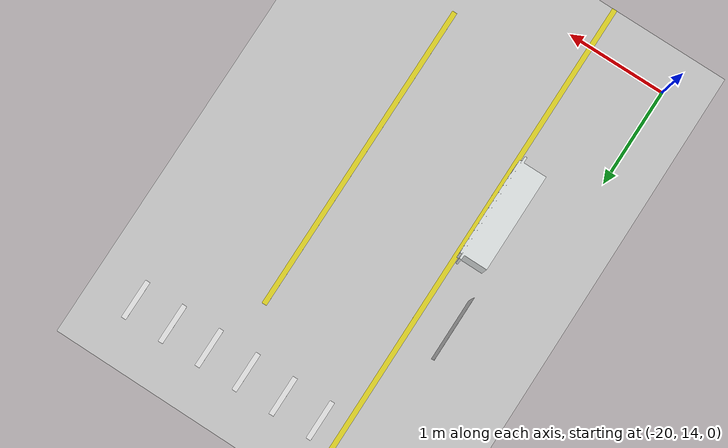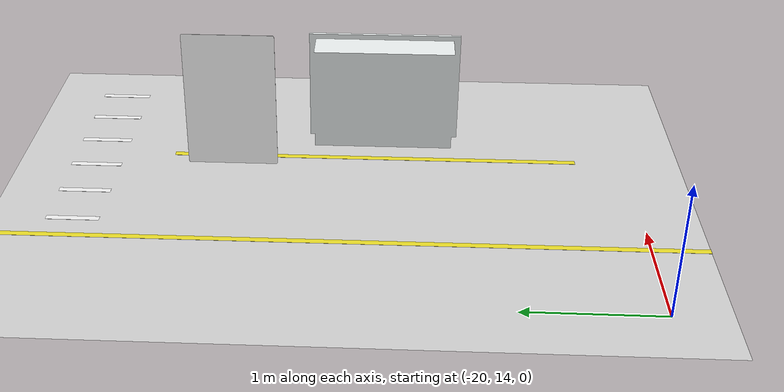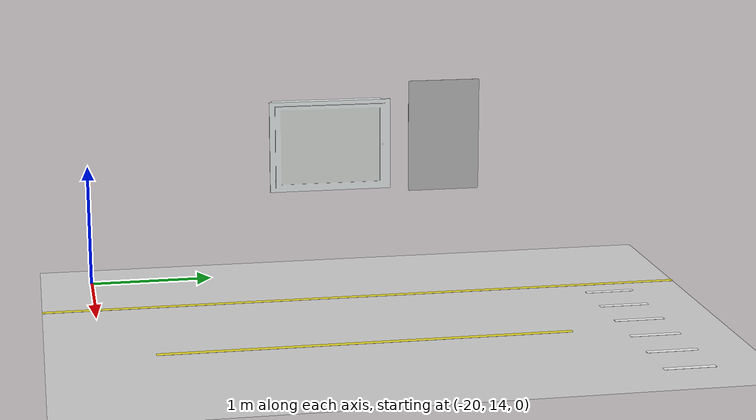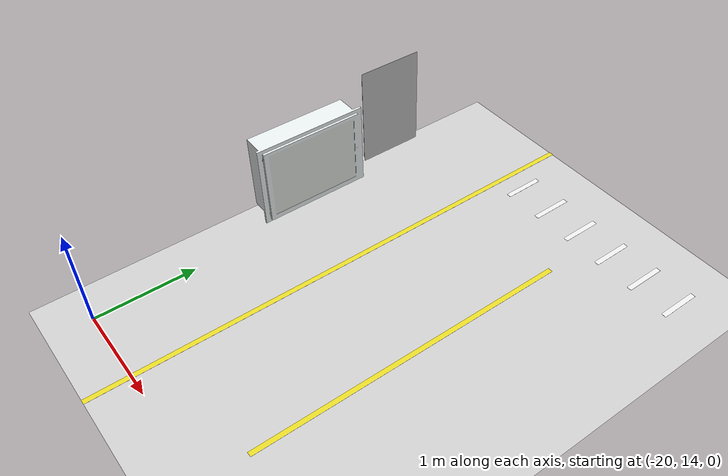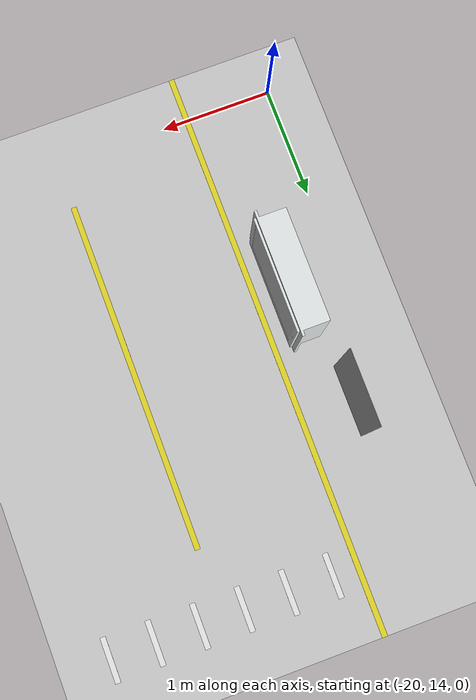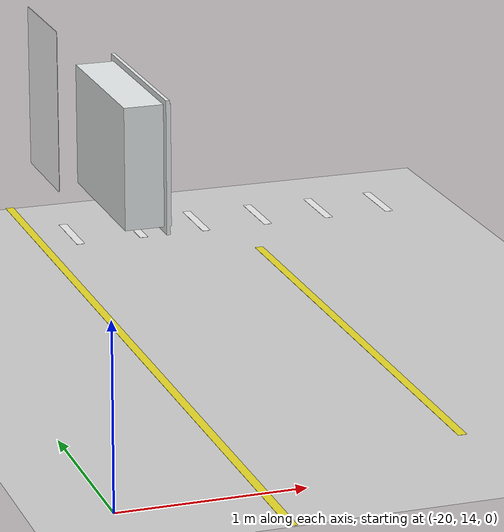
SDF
<sdf version="1.6">
 <world name="default">
  <model name="ground_plane">
   <static>1</static>
   <link name="link">
    <collision name="collision">
     <geometry><plane><normal>0 0 1</normal><size>100 100</size></plane></geometry>
     <surface><friction><ode><mu>100</mu><mu2>50</mu2></ode></friction></surface>
    </collision>
    <visual name="visual">
     <cast_shadows>0</cast_shadows>
     <geometry><plane><normal>0 0 1</normal><size>100 100</size></plane></geometry>
     <material>
      <script><uri>file://media/materials/scripts/gazebo.material</uri><name>Gazebo/Grey</name></script>
     </material>
    </visual>
   </link>
  </model>
  <model name="line320cm_6">
   <link name="link_0">
    <inertial>
     <mass>1</mass>
     <inertia>
      <ixx>0.166667</ixx>
      <ixy>0</ixy>
      <ixz>0</ixz>
      <iyy>0.166667</iyy>
      <iyz>0</iyz>
      <izz>0.166667</izz>
     </inertia>
    </inertial>
    <visual name="visual">
     <geometry><box><size>3.2 0.05 0.001</size></box></geometry>
     <material>
      <lighting>1</lighting>
      <script><uri>file://media/materials/scripts/gazebo.material</uri><name>Gazebo/Yellow</name></script>
     </material>
    </visual>
    <collision name="collision"><geometry><box><size>3.2 0.05 1e-05</size></box></geometry></collision>
   </link>
   <static>1</static>
   <pose>-18 16 0 0 -0 1.5708</pose>
  </model>
  <model name="zebra_crossing_40cmx200cm_6">
   <link name="link_2">
    <inertial>
     <mass>1</mass>
     <inertia>
      <ixx>0.166667</ixx>
      <ixy>0</ixy>
      <ixz>0</ixz>
      <iyy>0.166667</iyy>
      <iyz>0</iyz>
      <izz>0.166667</izz>
     </inertia>
    </inertial>
    <visual name="ModelPreview_5::link_2::visual_1">
     <pose>-0.2 0 0 0 -0 0</pose>
     <geometry><box><size>0.05 0.4 0.001</size></box></geometry>
     <material>
      <lighting>1</lighting>
      <script><uri>file://media/materials/scripts/gazebo.material</uri><name>Gazebo/White</name></script>
     </material>
    </visual>
    <visual name="ModelPreview_5::link_2::visual_3">
     <pose>-0.6 0 0 0 -0 0</pose>
     <geometry><box><size>0.05 0.4 0.001</size></box></geometry>
     <material>
      <lighting>1</lighting>
      <script><uri>file://media/materials/scripts/gazebo.material</uri><name>Gazebo/White</name></script>
     </material>
    </visual>
    <visual name="ModelPreview_5::link_2::visual_4">
     <pose>1 0 0 0 -0 0</pose>
     <geometry><box><size>0.05 0.4 0.001</size></box></geometry>
     <material>
      <lighting>1</lighting>
      <script><uri>file://media/materials/scripts/gazebo.material</uri><name>Gazebo/White</name></script>
     </material>
    </visual>
    <visual name="visual">
     <pose>0.2 0 0 0 -0 0</pose>
     <geometry><box><size>0.05 0.4 0.001</size></box></geometry>
     <material>
      <lighting>1</lighting>
      <script><uri>file://media/materials/scripts/gazebo.material</uri><name>Gazebo/White</name></script>
     </material>
    </visual>
    <visual name="ModelPreview_5::link_2::visual_5">
     <pose>-1 0 0 0 -0 0</pose>
     <geometry><box><size>0.05 0.4 0.001</size></box></geometry>
     <material>
      <lighting>1</lighting>
      <script><uri>file://media/materials/scripts/gazebo.material</uri><name>Gazebo/White</name></script>
     </material>
    </visual>
    <visual name="ModelPreview_5::link_2::visual_2">
     <pose>0.6 0 0 0 -0 0</pose>
     <geometry><box><size>0.05 0.4 0.001</size></box></geometry>
     <material>
      <lighting>1</lighting>
      <script><uri>file://media/materials/scripts/gazebo.material</uri><name>Gazebo/White</name></script>
     </material>
    </visual>
    <collision name="collision_5">
     <pose>-1 0 0 0 -0 0</pose>
     <geometry><box><size>0.05 0.4 1e-05</size></box></geometry>
    </collision>
    <collision name="collision">
     <pose>0.2 0 0 0 -0 0</pose>
     <geometry><box><size>0.05 0.4 1e-05</size></box></geometry>
    </collision>
    <collision name="collision_3">
     <pose>-0.6 0 0 0 -0 0</pose>
     <geometry><box><size>0.05 0.4 1e-05</size></box></geometry>
    </collision>
    <collision name="collision_4">
     <pose>1 0 0 0 -0 0</pose>
     <geometry><box><size>0.05 0.4 1e-05</size></box></geometry>
    </collision>
    <collision name="collision_2">
     <pose>0.6 0 0 0 -0 0</pose>
     <geometry><box><size>0.05 0.4 1e-05</size></box></geometry>
    </collision>
    <collision name="collision_1">
     <pose>-0.2 0 0 0 -0 0</pose>
     <geometry><box><size>0.05 0.4 1e-05</size></box></geometry>
    </collision>
   </link>
   <static>1</static>
   <pose>-18 18.2 0 0 -0 0</pose>
  </model>
  <model name="line2160cm">
   <link name="link_4">
    <inertial>
     <mass>1</mass>
     <inertia>
      <ixx>0.166667</ixx>
      <ixy>0</ixy>
      <ixz>0</ixz>
      <iyy>0.166667</iyy>
      <iyz>0</iyz>
      <izz>0.166667</izz>
     </inertia>
    </inertial>
    <visual name="visual">
     <geometry><box><size>0.05 21.6 0.001</size></box></geometry>
     <material>
      <lighting>1</lighting>
      <script><uri>file://media/materials/scripts/gazebo.material</uri><name>Gazebo/Yellow</name></script>
     </material>
    </visual>
    <collision name="collision"><geometry><box><size>0.05 21.6 1e-05</size></box></geometry></collision>
   </link>
   <static>1</static>
   <pose>-19.225 16.4 0 0 -0 0</pose>
  </model>
  <model name="120x90sign_fireaction">
   <link name="link_0">
    <inertial>
     <mass>1</mass>
     <inertia>
      <ixx>0.166667</ixx>
      <ixy>0</ixy>
      <ixz>0</ixz>
      <iyy>0.166667</iyy>
      <iyz>0</iyz>
      <izz>0.166667</izz>
     </inertia>
    </inertial>
    <visual name="visual">
     <pose>-0.3 0 -0.45 0 -0 0</pose>
     <geometry>
      <mesh><uri>model://120x90sign_fireaction/model/model.dae</uri><scale>2 1 4.4</scale></mesh>
     </geometry>
    </visual>
    <collision name="collision"><geometry><box><size>0.6 0.005 0.9</size></box></geometry></collision>
   </link>
   <static>1</static>
   <pose>-19.52 16.9 1.25 0 -0 1.5708</pose>
  </model>
  <model name="fireCabinet">
   <link name="link_0">
    <inertial>
     <mass>1</mass>
     <inertia>
      <ixx>0.166667</ixx>
      <ixy>0</ixy>
      <ixz>0</ixz>
      <iyy>0.166667</iyy>
      <iyz>0</iyz>
      <izz>0.166667</izz>
     </inertia>
    </inertial>
    <visual name="visual">
     <pose>-0.475 -0.12 -0.35 0 -0 0</pose>
     <geometry><mesh><uri>model://fireCabinet/model/model.dae</uri><scale>1.1 1 0.8</scale></mesh></geometry>
     <material><lighting>1</lighting></material>
    </visual>
    <collision name="collision"><geometry><box><size>0.95 0.24 0.7</size></box></geometry></collision>
   </link>
   <static>1</static>
   <pose>-19.35 15.9 1.25 0 -0 1.5708</pose>
  </model>
 </world>
</sdf>
